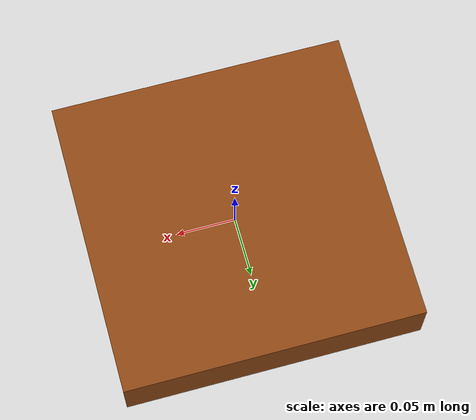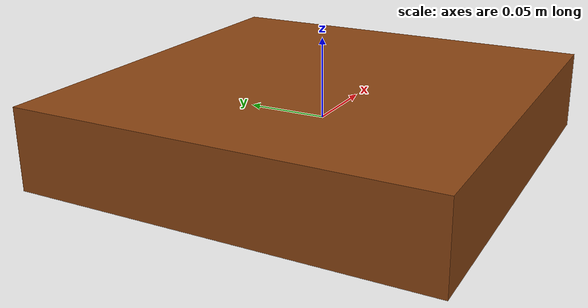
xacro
<?xml version="1.0"?>
<robot xmlns:xacro="http://ros.org/wiki/xacro" name="table_model">
  <link name="table">
    <visual>
      <origin xyz="0 0 0" rpy="0 0 0"/>
      <geometry>
        <box size="0.25 0.25 0.05"/> <!-- Reduced length and width, original height -->
      </geometry>
      <material name="brown">
        <color rgba="0.545 0.270 0.0745 1.0"/>
      </material>
    </visual>
    <collision>
      <origin xyz="0 0 0" rpy="0 0 0"/>
      <geometry>
        <box size="0.375 0.375 0.05"/> <!-- Reduced length and width, original height -->
      </geometry>
    </collision>
    <inertial>
      <mass value="5.0"/> <!-- Reduced mass to reflect smaller volume -->
      <origin xyz="0 0 0" rpy="0 0 0"/>
      <inertia ixx="0.25" iyy="0.25" izz="0.25" ixy="0" ixz="0" iyz="0"/> <!-- Adjusted inertia values -->
    </inertial>
  </link>
  <!-- Make it static so it doesn't fall -->
  <gazebo reference="table_link">
    <static>true</static>
  </gazebo>
</robot>
